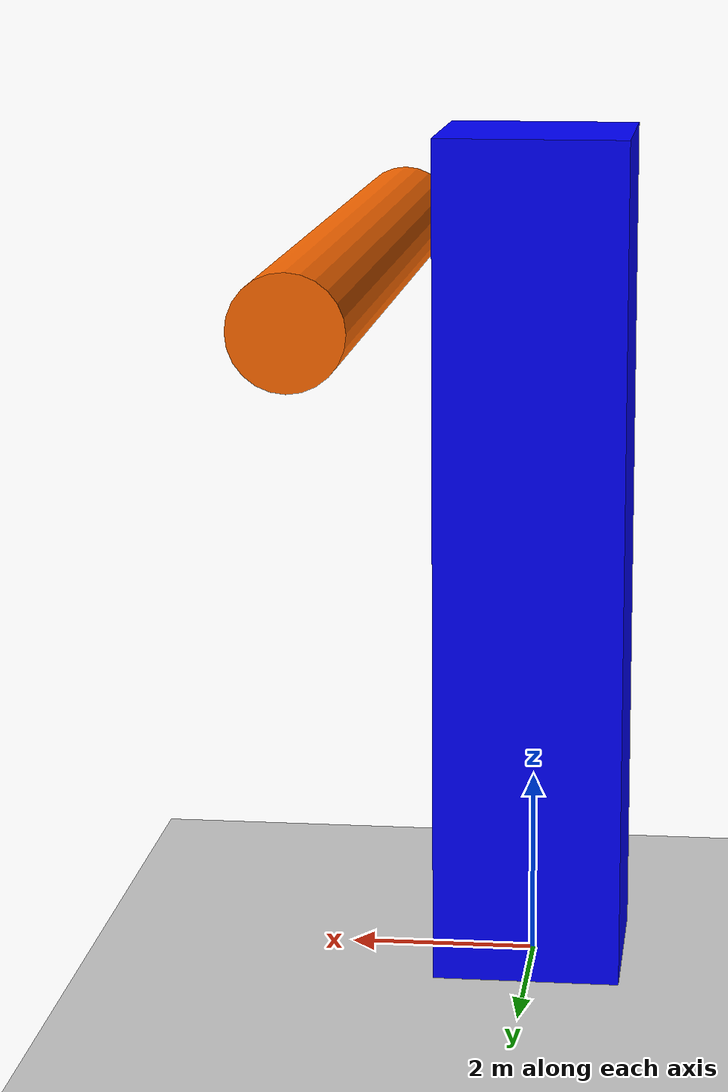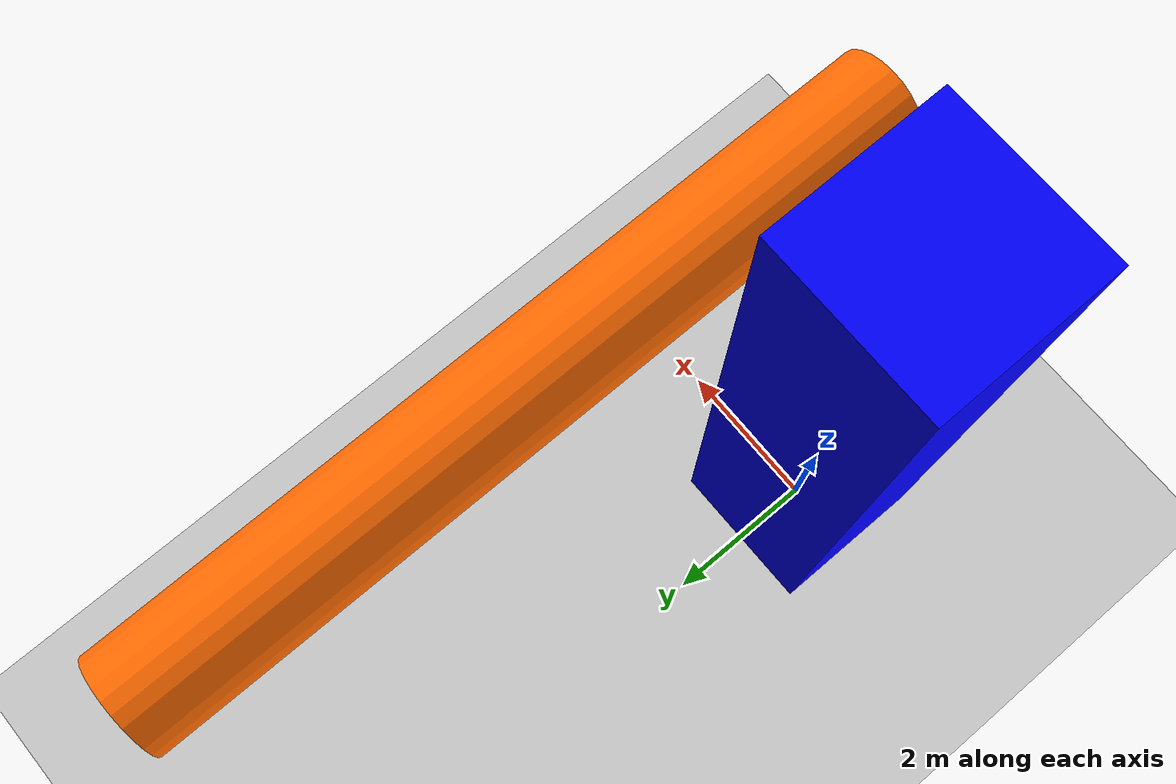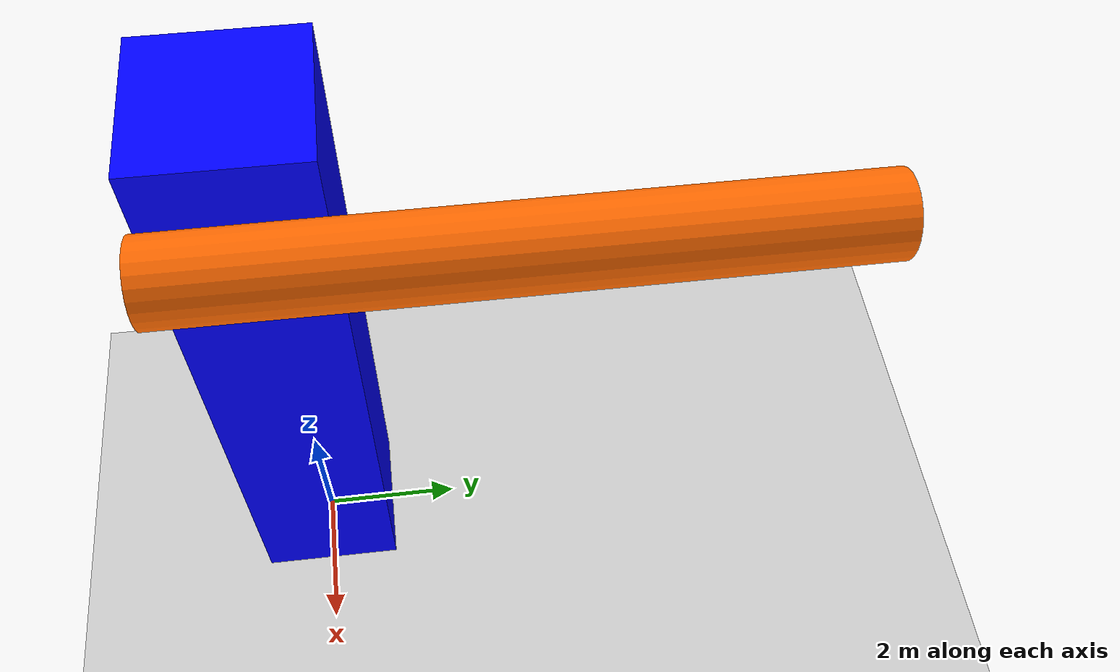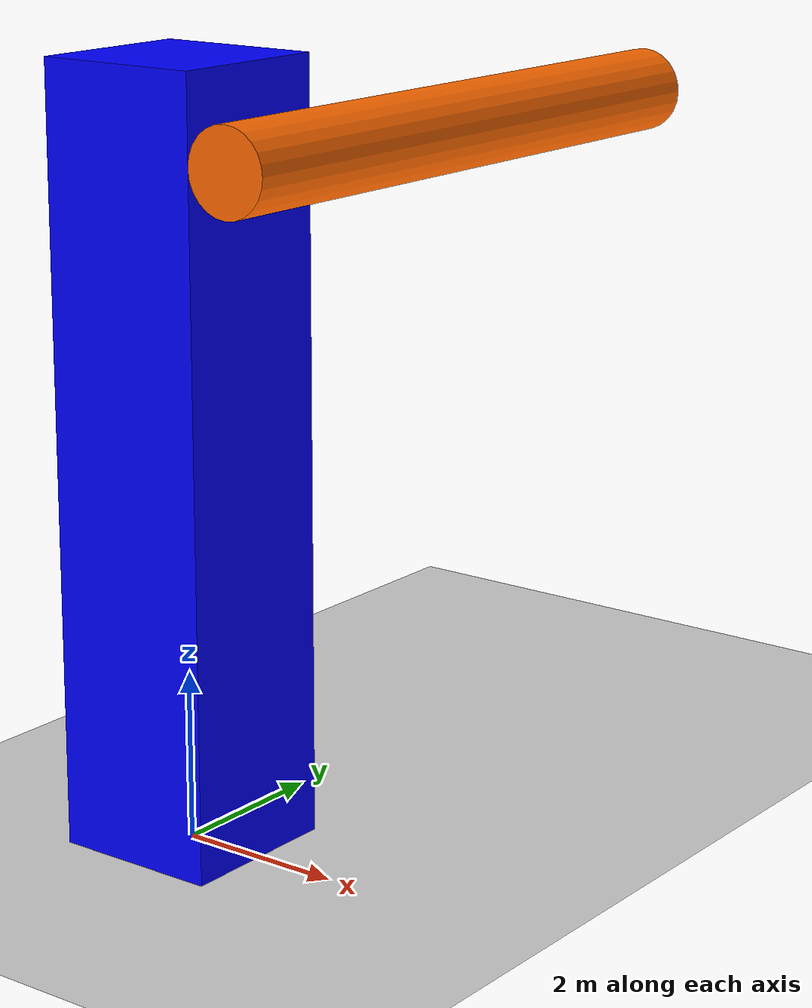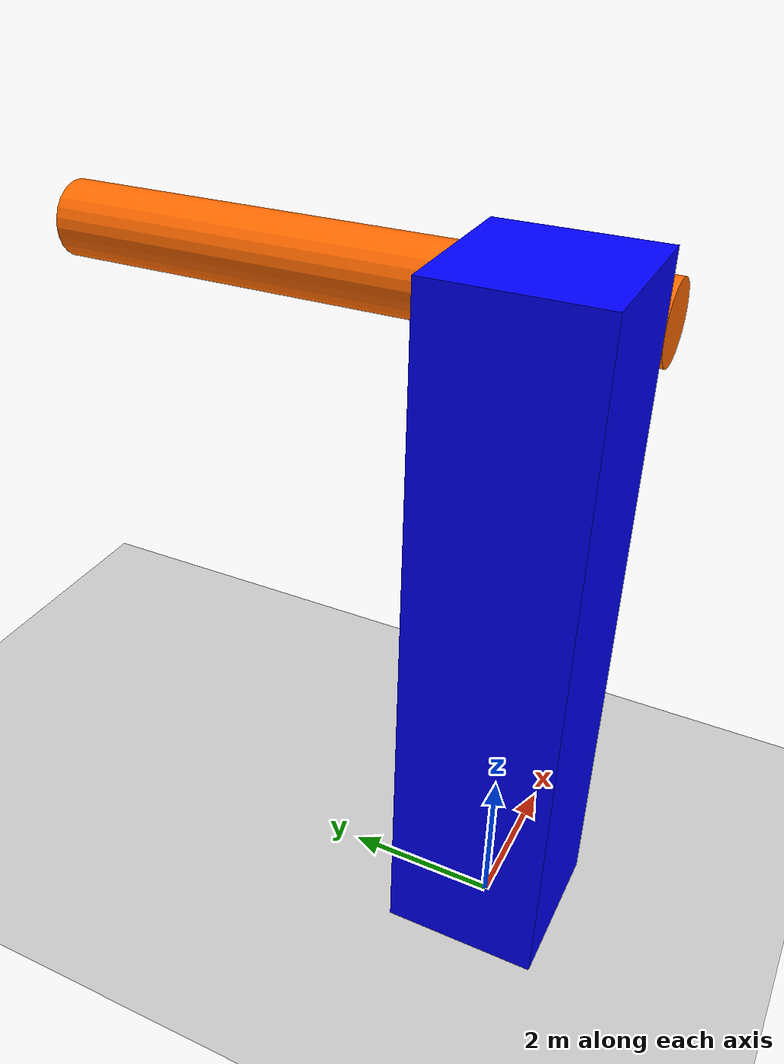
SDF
<?xml version="1.0" ?>
<sdf version="1.8">
    <world name="sim_world">
        <physics name="1ms" type="ignored">
            <max_step_size>0.001</max_step_size>
            <real_time_factor>1.0</real_time_factor>
        </physics>
        <plugin filename="gz-sim-physics-system" name="gz::sim::systems::Physics">
        </plugin>
        <plugin filename="gz-sim-user-commands-system" name="gz::sim::systems::UserCommands">
        </plugin>
        <plugin filename="gz-sim-scene-broadcaster-system" name="gz::sim::systems::SceneBroadcaster">
        </plugin>

        <light type="directional" name="sun">
            <cast_shadows>true</cast_shadows>
            <pose>0 0 10 0 0 0</pose>
            <diffuse>0.8 0.8 0.8 1</diffuse>
            <specular>0.2 0.2 0.2 1</specular>
            <attenuation>
                <range>1000</range>
                <constant>0.9</constant>
                <linear>0.01</linear>
                <quadratic>0.001</quadratic>
            </attenuation>
            <direction>-0.5 0.1 -0.9</direction>
        </light>

        <model name="ground_plane">
            <static>true</static>
            <link name="link">
                <collision name="collision">
                    <geometry>
                        <plane>
                            <normal>0 0 1</normal>
                        </plane>
                    </geometry>
                </collision>
                <visual name="visual">
                    <geometry>
                        <plane>
                            <normal>0 0 1</normal>
                            <size>100 100</size>
                        </plane>
                    </geometry>
                    <material>
                        <ambient>0.8 0.8 0.8 1</ambient>
                        <diffuse>0.8 0.8 0.8 1</diffuse>
                        <specular>0.8 0.8 0.8 1</specular>
                    </material>
                </visual>
            </link>
        </model>

        <include>
            <uri>file://robot_model.sdf</uri>
            <pose>0 0 4.5 0 0 0</pose>
        </include>

    </world>
</sdf>

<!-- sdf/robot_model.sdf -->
<sdf version='1.11'>
  <model name='robot_model'>
    <link name='base_link'>
      <inertial>
        <pose>0 0 0 0 0 0</pose>
        <mass>10</mass>
        <inertia>
          <ixx>70.833330000000004</ixx>
          <ixy>0</ixy>
          <ixz>0</ixz>
          <iyy>70.833330000000004</iyy>
          <iyz>0</iyz>
          <izz>6.6666699999999999</izz>
        </inertia>
      </inertial>
      <collision name='base_link_fixed_joint_lump__base_collision_collision'>
        <pose>0 0 0 0 0 0</pose>
        <geometry>
          <box>
            <size>2 2 9</size>
          </box>
        </geometry>
      </collision>
      <visual name='base_link_fixed_joint_lump__base_visual'>
        <pose>0 0 0 0 0 0</pose>
        <geometry>
          <box>
            <size>2 2 9</size>
          </box>
        </geometry>
        <material>
          <diffuse>0 0 1 1</diffuse>
          <ambient>0 0 1 1</ambient>
        </material>
      </visual>
    </link>
    <joint name='arm_base_joint' type='revolute'>
      <pose relative_to='base_link'>1.5 0 3.5 1.5708 0 0</pose>
      <parent>base_link</parent>
      <child>arm_link</child>
      <axis>
        <xyz>1 0 0</xyz>
        <limit>
          <lower>-1.5800000000000001</lower>
          <upper>0</upper>
          <effort>100</effort>
          <velocity>100</velocity>
        </limit>
        <dynamics>
          <spring_reference>0</spring_reference>
          <spring_stiffness>0</spring_stiffness>
        </dynamics>
      </axis>
    </joint>
    <link name='arm_link'>
      <pose relative_to='arm_base_joint'>0 0 0 0 0 0</pose>
      <inertial>
        <pose>0 0 -3 0 0 0</pose>
        <mass>0.10000000000000001</mass>
        <inertia>
          <ixx>0.53957999999999995</ixx>
          <ixy>0</ixy>
          <ixz>0</ixz>
          <iyy>0.012500000000000001</iyy>
          <iyz>0</iyz>
          <izz>0.53957999999999995</izz>
        </inertia>
      </inertial>
      <collision name='arm_link_fixed_joint_lump__arm_collision_collision'>
        <pose>0 0 -3 0 0 0</pose>
        <geometry>
          <cylinder>
            <length>8</length>
            <radius>0.5</radius>
          </cylinder>
        </geometry>
      </collision>
      <visual name='arm_link_fixed_joint_lump__arm_visual'>
        <pose>0 0 -3 0 0 0</pose>
        <geometry>
          <cylinder>
            <length>8</length>
            <radius>0.5</radius>
          </cylinder>
        </geometry>
        <material>
          <diffuse>1 0.411762476 0 1</diffuse>
          <ambient>1 0.411762476 0 1</ambient>
        </material>
      </visual>
    </link>
  </model>
</sdf>
